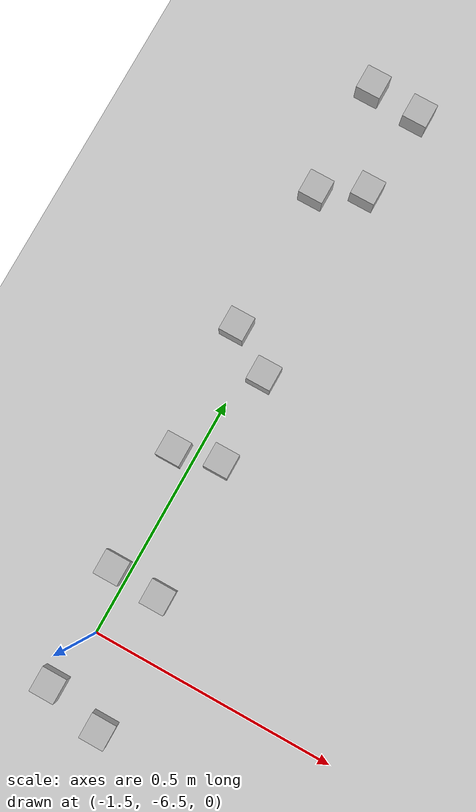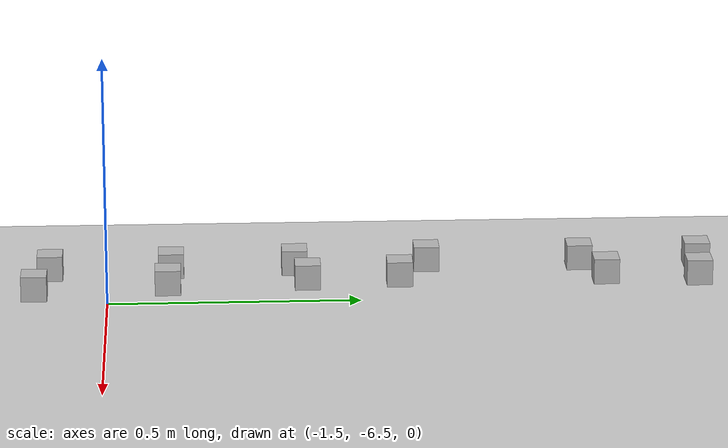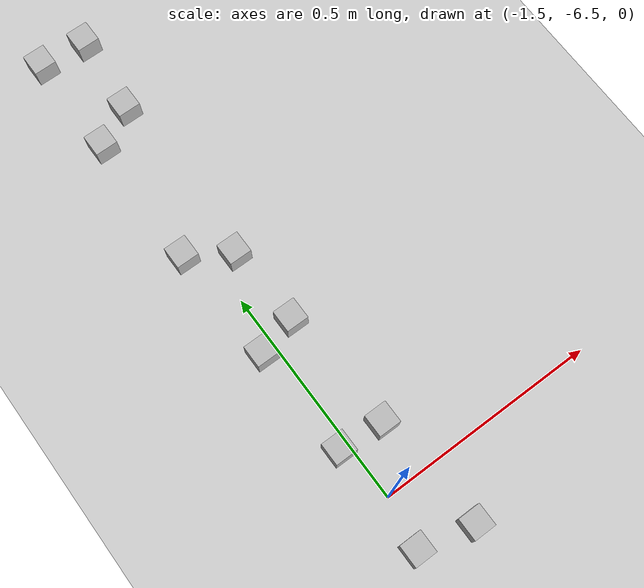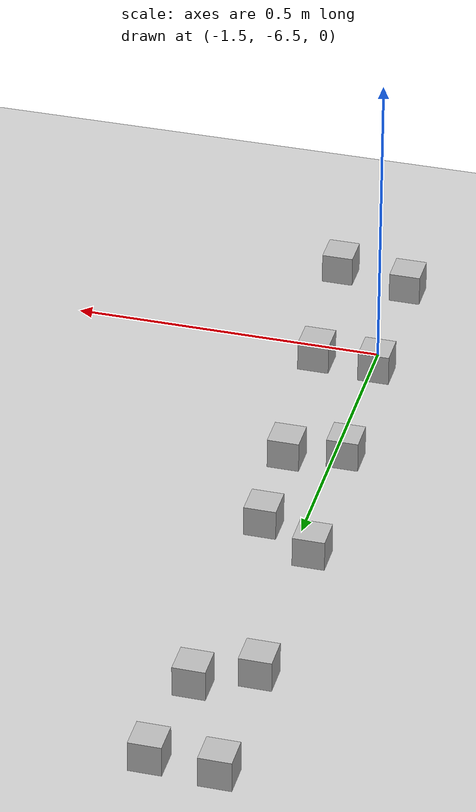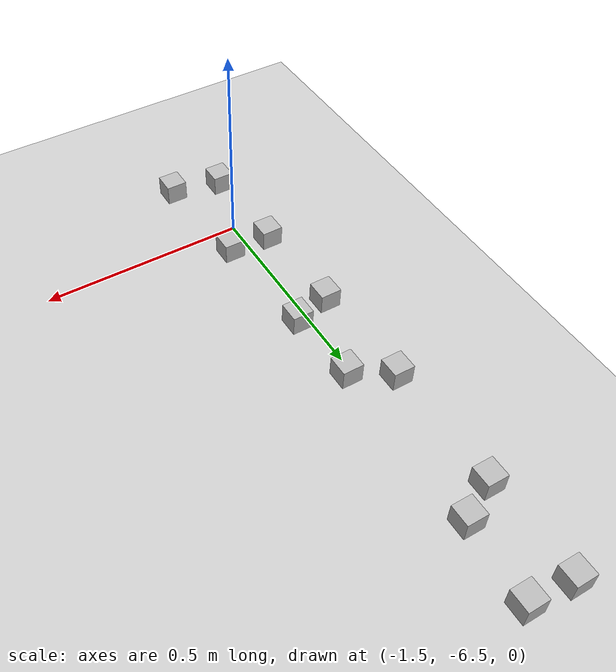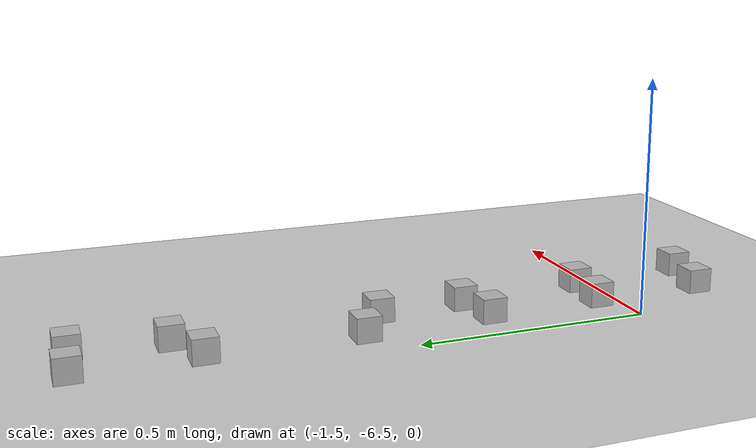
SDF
<sdf version="1.6">
 <world name="default">
  <model name="ground_plane">
   <static>1</static>
   <link name="link">
    <collision name="collision">
     <geometry><plane><normal>0 0 1</normal><size>100 100</size></plane></geometry>
     <surface><friction><ode><mu>100</mu><mu2>50</mu2></ode></friction></surface>
    </collision>
    <visual name="visual">
     <cast_shadows>0</cast_shadows>
     <geometry><plane><normal>0 0 1</normal><size>100 100</size></plane></geometry>
     <material>
      <script><uri>file://media/materials/scripts/gazebo.material</uri><name>Gazebo/Grey</name></script>
     </material>
    </visual>
   </link>
  </model>
  <model name="at0_clone_clone">
   <static>0</static>
   <link name="link">
    <inertial>
     <mass>0.01</mass>
     <inertia><ixx>4e-05</ixx><ixy>0</ixy><ixz>0</ixz><iyy>4e-05</iyy><iyz>0</iyz><izz>4e-05</izz></inertia>
    </inertial>
    <visual name="visual">
     <geometry><box><size>0.05 0.05 0.05</size></box></geometry>
     <material>
      <script>
       <uri>model://at0/materials/scripts</uri>
       <uri>model://at0/materials/textures</uri>
       <name>at0/Diffuse</name>
      </script>
     </material>
    </visual>
    <collision name="collision">
     <geometry><box><size>0.05 0.05 0.05</size></box></geometry>
     <surface><friction><ode><mu>0.8</mu><mu2>0.7</mu2></ode></friction></surface>
    </collision>
   </link>
   <pose>-1.52223 -6.61112 0.074995 3.6e-05 1.3e-05 -2.4e-05</pose>
  </model>
  <model name="at0_clone_clone_1">
   <static>0</static>
   <link name="link">
    <inertial>
     <mass>0.01</mass>
     <inertia><ixx>4e-05</ixx><ixy>0</ixy><ixz>0</ixz><iyy>4e-05</iyy><iyz>0</iyz><izz>4e-05</izz></inertia>
    </inertial>
    <visual name="visual">
     <geometry><box><size>0.05 0.05 0.05</size></box></geometry>
     <material>
      <script>
       <uri>model://at0/materials/scripts</uri>
       <uri>model://at0/materials/textures</uri>
       <name>at0/Diffuse</name>
      </script>
     </material>
    </visual>
    <collision name="collision">
     <geometry><box><size>0.05 0.05 0.05</size></box></geometry>
     <surface><friction><ode><mu>0.8</mu><mu2>0.7</mu2></ode></friction></surface>
    </collision>
   </link>
   <pose>-1.52699 -6.37388 0.074995 3.6e-05 1.3e-05 -2.3e-05</pose>
  </model>
  <model name="at0_clone_clone_5">
   <static>0</static>
   <link name="link">
    <inertial>
     <mass>0.01</mass>
     <inertia><ixx>4e-05</ixx><ixy>0</ixy><ixz>0</ixz><iyy>4e-05</iyy><iyz>0</iyz><izz>4e-05</izz></inertia>
    </inertial>
    <visual name="visual">
     <geometry><box><size>0.05 0.05 0.05</size></box></geometry>
     <material>
      <script>
       <uri>model://at0/materials/scripts</uri>
       <uri>model://at0/materials/textures</uri>
       <name>at0/Diffuse</name>
      </script>
     </material>
    </visual>
    <collision name="collision">
     <geometry><box><size>0.05 0.05 0.05</size></box></geometry>
     <surface><friction><ode><mu>0.8</mu><mu2>0.7</mu2></ode></friction></surface>
    </collision>
   </link>
   <pose>-1.53591 -6.13116 0.074995 3.6e-05 1.3e-05 -2.2e-05</pose>
  </model>
  <model name="at0_clone_clone_8">
   <static>0</static>
   <link name="link">
    <inertial>
     <mass>0.01</mass>
     <inertia><ixx>4e-05</ixx><ixy>0</ixy><ixz>0</ixz><iyy>4e-05</iyy><iyz>0</iyz><izz>4e-05</izz></inertia>
    </inertial>
    <visual name="visual">
     <geometry><box><size>0.05 0.05 0.05</size></box></geometry>
     <material>
      <script>
       <uri>model://at0/materials/scripts</uri>
       <uri>model://at0/materials/textures</uri>
       <name>at0/Diffuse</name>
      </script>
     </material>
    </visual>
    <collision name="collision">
     <geometry><box><size>0.05 0.05 0.05</size></box></geometry>
     <surface><friction><ode><mu>0.8</mu><mu2>0.7</mu2></ode></friction></surface>
    </collision>
   </link>
   <pose>-1.54783 -5.8704 0.074995 -3.6e-05 -1.3e-05 -2.1e-05</pose>
  </model>
  <model name="at0_clone_clone_10">
   <static>0</static>
   <link name="link">
    <inertial>
     <mass>0.01</mass>
     <inertia><ixx>4e-05</ixx><ixy>0</ixy><ixz>0</ixz><iyy>4e-05</iyy><iyz>0</iyz><izz>4e-05</izz></inertia>
    </inertial>
    <visual name="visual">
     <geometry><box><size>0.05 0.05 0.05</size></box></geometry>
     <material>
      <script>
       <uri>model://at0/materials/scripts</uri>
       <uri>model://at0/materials/textures</uri>
       <name>at0/Diffuse</name>
      </script>
     </material>
    </visual>
    <collision name="collision">
     <geometry><box><size>0.05 0.05 0.05</size></box></geometry>
     <surface><friction><ode><mu>0.8</mu><mu2>0.7</mu2></ode></friction></surface>
    </collision>
   </link>
   <pose>-1.54483 -5.56773 0.074995 -3.6e-05 -1.3e-05 -2e-05</pose>
  </model>
  <model name="at0_clone_clone_15">
   <static>0</static>
   <link name="link">
    <inertial>
     <mass>0.01</mass>
     <inertia><ixx>4e-05</ixx><ixy>0</ixy><ixz>0</ixz><iyy>4e-05</iyy><iyz>0</iyz><izz>4e-05</izz></inertia>
    </inertial>
    <visual name="visual">
     <geometry><box><size>0.05 0.05 0.05</size></box></geometry>
     <material>
      <script>
       <uri>model://at0/materials/scripts</uri>
       <uri>model://at0/materials/textures</uri>
       <name>at0/Diffuse</name>
      </script>
     </material>
    </visual>
    <collision name="collision">
     <geometry><box><size>0.05 0.05 0.05</size></box></geometry>
     <surface><friction><ode><mu>0.8</mu><mu2>0.7</mu2></ode></friction></surface>
    </collision>
   </link>
   <pose>-1.54782 -5.33398 0.074995 -3.6e-05 -1.3e-05 -1.8e-05</pose>
  </model>
  <model name="at0_clone_clone_clone">
   <static>0</static>
   <link name="link">
    <inertial>
     <mass>0.01</mass>
     <inertia><ixx>4e-05</ixx><ixy>0</ixy><ixz>0</ixz><iyy>4e-05</iyy><iyz>0</iyz><izz>4e-05</izz></inertia>
    </inertial>
    <visual name="visual">
     <geometry><box><size>0.05 0.05 0.05</size></box></geometry>
     <material>
      <script>
       <uri>model://at0/materials/scripts</uri>
       <uri>model://at0/materials/textures</uri>
       <name>at0/Diffuse</name>
      </script>
     </material>
    </visual>
    <collision name="collision">
     <geometry><box><size>0.05 0.05 0.05</size></box></geometry>
     <surface><friction><ode><mu>0.8</mu><mu2>0.7</mu2></ode></friction></surface>
    </collision>
   </link>
   <pose>-1.40396 -6.63831 0.074995 -3.6e-05 -1.3e-05 -2.4e-05</pose>
  </model>
  <model name="at0_clone_clone_clone_0">
   <static>0</static>
   <link name="link">
    <inertial>
     <mass>0.01</mass>
     <inertia><ixx>4e-05</ixx><ixy>0</ixy><ixz>0</ixz><iyy>4e-05</iyy><iyz>0</iyz><izz>4e-05</izz></inertia>
    </inertial>
    <visual name="visual">
     <geometry><box><size>0.05 0.05 0.05</size></box></geometry>
     <material>
      <script>
       <uri>model://at0/materials/scripts</uri>
       <uri>model://at0/materials/textures</uri>
       <name>at0/Diffuse</name>
      </script>
     </material>
    </visual>
    <collision name="collision">
     <geometry><box><size>0.05 0.05 0.05</size></box></geometry>
     <surface><friction><ode><mu>0.8</mu><mu2>0.7</mu2></ode></friction></surface>
    </collision>
   </link>
   <pose>-1.42776 -6.37978 0.074995 3.6e-05 1.3e-05 -2.4e-05</pose>
  </model>
  <model name="at0_clone_clone_clone_1">
   <static>0</static>
   <link name="link">
    <inertial>
     <mass>0.01</mass>
     <inertia><ixx>4e-05</ixx><ixy>0</ixy><ixz>0</ixz><iyy>4e-05</iyy><iyz>0</iyz><izz>4e-05</izz></inertia>
    </inertial>
    <visual name="visual">
     <geometry><box><size>0.05 0.05 0.05</size></box></geometry>
     <material>
      <script>
       <uri>model://at0/materials/scripts</uri>
       <uri>model://at0/materials/textures</uri>
       <name>at0/Diffuse</name>
      </script>
     </material>
    </visual>
    <collision name="collision">
     <geometry><box><size>0.05 0.05 0.05</size></box></geometry>
     <surface><friction><ode><mu>0.8</mu><mu2>0.7</mu2></ode></friction></surface>
    </collision>
   </link>
   <pose>-1.44817 -6.10766 0.074995 -3.6e-05 -1.3e-05 -2.3e-05</pose>
  </model>
  <model name="at0_clone_clone_clone_2">
   <static>0</static>
   <link name="link">
    <inertial>
     <mass>0.01</mass>
     <inertia><ixx>4e-05</ixx><ixy>0</ixy><ixz>0</ixz><iyy>4e-05</iyy><iyz>0</iyz><izz>4e-05</izz></inertia>
    </inertial>
    <visual name="visual">
     <geometry><box><size>0.05 0.05 0.05</size></box></geometry>
     <material>
      <script>
       <uri>model://at0/materials/scripts</uri>
       <uri>model://at0/materials/textures</uri>
       <name>at0/Diffuse</name>
      </script>
     </material>
    </visual>
    <collision name="collision">
     <geometry><box><size>0.05 0.05 0.05</size></box></geometry>
     <surface><friction><ode><mu>0.8</mu><mu2>0.7</mu2></ode></friction></surface>
    </collision>
   </link>
   <pose>-1.45837 -5.92739 0.074995 -3.6e-05 -1.3e-05 -2.3e-05</pose>
  </model>
  <model name="at0_clone_clone_clone_3">
   <static>0</static>
   <link name="link">
    <inertial>
     <mass>0.01</mass>
     <inertia><ixx>4e-05</ixx><ixy>0</ixy><ixz>0</ixz><iyy>4e-05</iyy><iyz>0</iyz><izz>4e-05</izz></inertia>
    </inertial>
    <visual name="visual">
     <geometry><box><size>0.05 0.05 0.05</size></box></geometry>
     <material>
      <script>
       <uri>model://at0/materials/scripts</uri>
       <uri>model://at0/materials/textures</uri>
       <name>at0/Diffuse</name>
      </script>
     </material>
    </visual>
    <collision name="collision">
     <geometry><box><size>0.05 0.05 0.05</size></box></geometry>
     <surface><friction><ode><mu>0.8</mu><mu2>0.7</mu2></ode></friction></surface>
    </collision>
   </link>
   <pose>-1.45836 -5.52259 0.074995 -3.6e-05 -1.3e-05 -2.3e-05</pose>
  </model>
  <model name="at0_clone_clone_11_clone">
   <static>0</static>
   <link name="link">
    <inertial>
     <mass>0.01</mass>
     <inertia><ixx>4e-05</ixx><ixy>0</ixy><ixz>0</ixz><iyy>4e-05</iyy><iyz>0</iyz><izz>4e-05</izz></inertia>
    </inertial>
    <visual name="visual">
     <geometry><box><size>0.05 0.05 0.05</size></box></geometry>
     <material>
      <script>
       <uri>model://at0/materials/scripts</uri>
       <uri>model://at0/materials/textures</uri>
       <name>at0/Diffuse</name>
      </script>
     </material>
    </visual>
    <collision name="collision">
     <geometry><box><size>0.05 0.05 0.05</size></box></geometry>
     <surface><friction><ode><mu>0.8</mu><mu2>0.7</mu2></ode></friction></surface>
    </collision>
   </link>
   <pose>-1.44392 -5.34154 0.074995 3.6e-05 1.3e-05 -2e-05</pose>
  </model>
  <model name="Barrier_North">
   <static>1</static>
   <link name="link">
    <inertial>
     <mass>1</mass>
     <inertia><ixx>0.083</ixx><ixy>0</ixy><ixz>0</ixz><iyy>0</iyy><iyz>0</iyz><izz>0.083</izz></inertia>
    </inertial>
    <collision name="collision">
     <geometry><box><size>0.05 15 0.33</size></box></geometry>
     <surface><friction><ode><mu>1</mu><mu2>1</mu2><slip1>0</slip1><slip2>0</slip2></ode></friction></surface>
    </collision>
    <visual name="visual">
     <geometry><box><size>0.05 15 0.33</size></box></geometry>
     <material>
      <ambient>255 131 0 1</ambient>
      <diffuse>255 131 0 1</diffuse>
      <specular>0.1 0.1 0.1 1</specular>
      <emissive>0 0 0 0</emissive>
     </material>
    </visual>
   </link>
   <pose>0 -7.5 0 0 -0 1.5708</pose>
  </model>
 </world>
</sdf>
